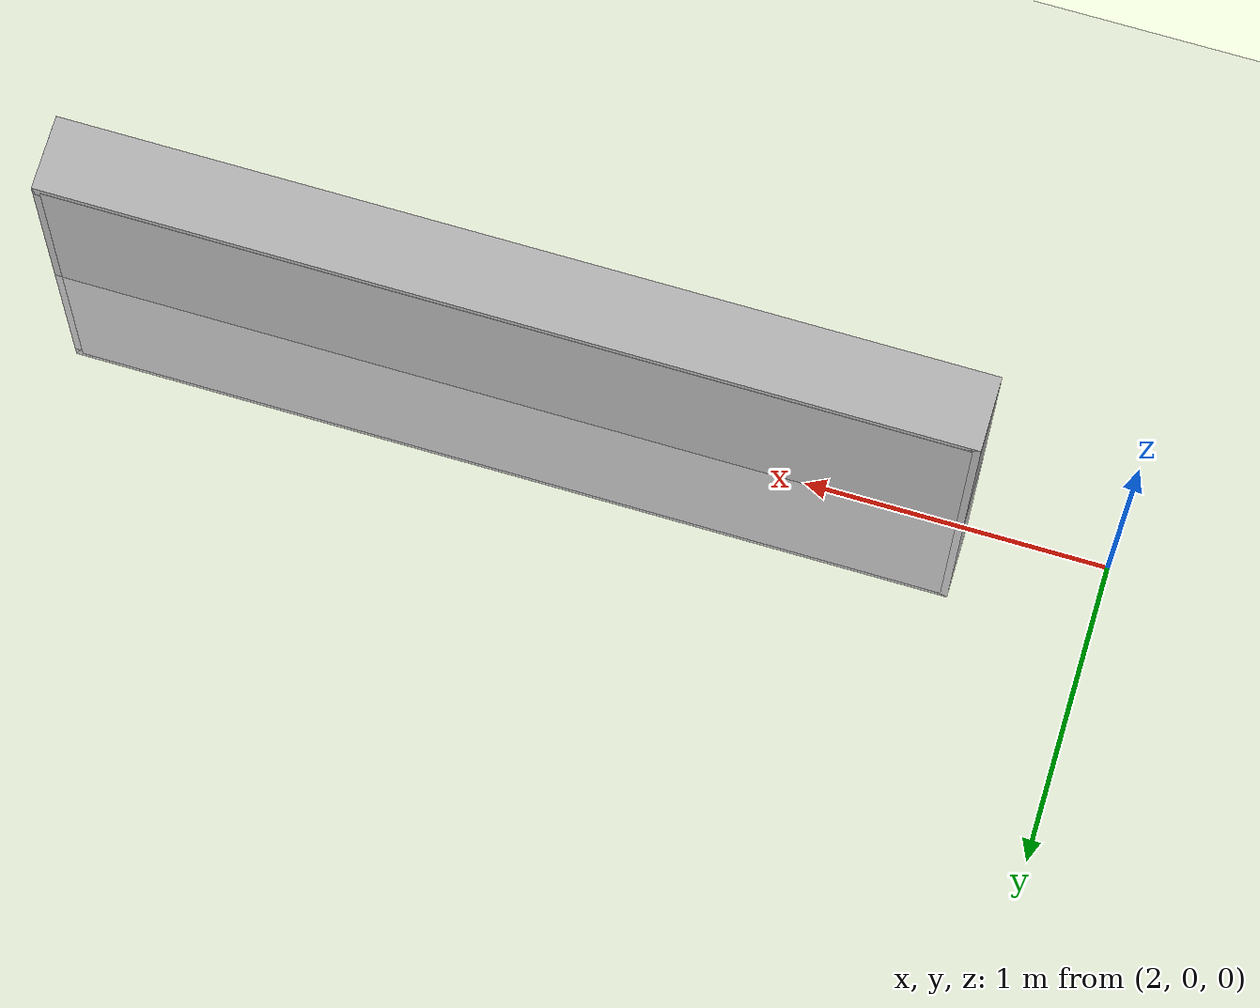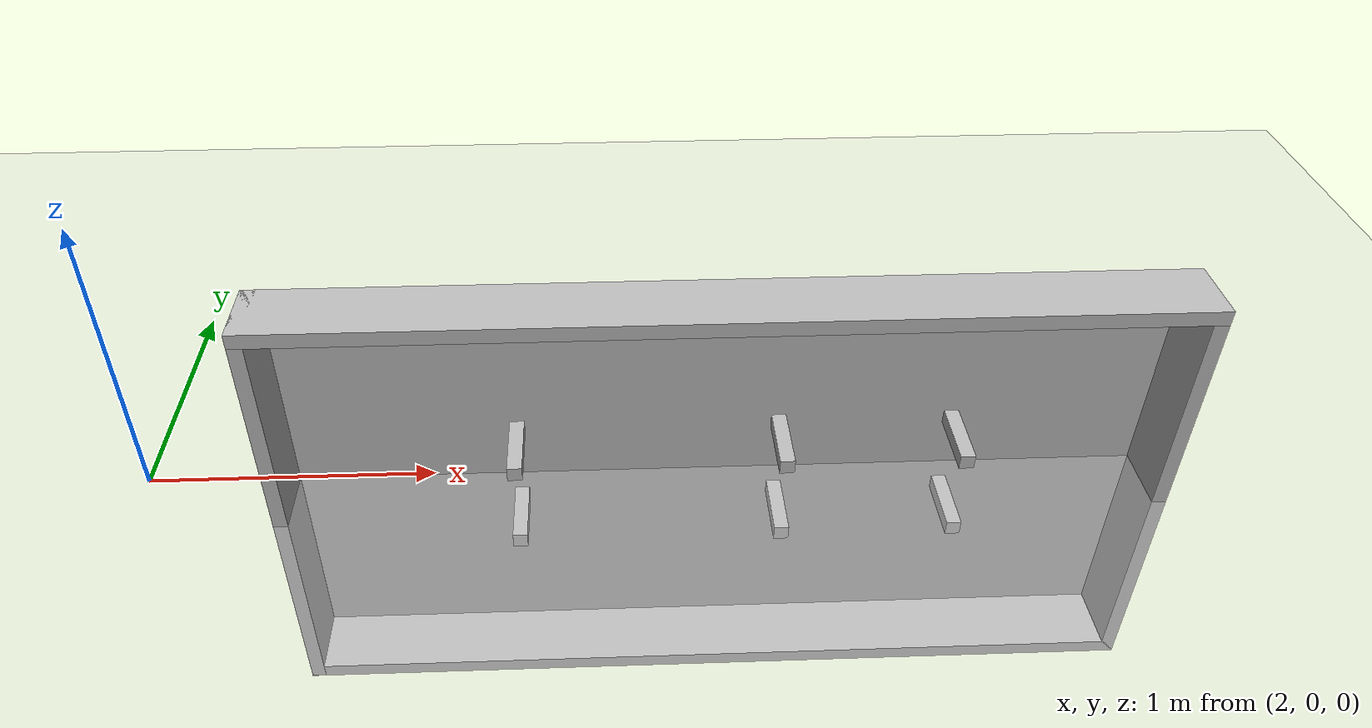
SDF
<sdf version="1.4">
 <world name="default">
  <include><uri>model://ground_plane</uri></include>
  <include><uri>model://sun</uri></include>
  <include><pose>4 0 0 1.57079 0 0</pose><uri>model://potholes</uri></include>
 </world>
</sdf>

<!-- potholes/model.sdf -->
<sdf version="1.8">
  <model name="potholes">
    <static>true</static>
    <link name="floor">
      <collision name="collision">
        <geometry>
          <plane>
            <normal>0 0 1</normal>
            <size>3.0 1.5</size>
          </plane>
        </geometry>
      </collision>
      <visual name="visual">
        <cast_shadows>false</cast_shadows>
        <geometry>
          <plane>
            <normal>0 0 1</normal>
            <size>3.0 1.5</size>
          </plane>
        </geometry>
        <material>
          <script>
            <uri>model://potholes/materials/scripts/</uri>
            <uri>model://potholes/materials/textures/</uri>
            <name>Potholes/BackgroundPotholes</name>
          </script>
        </material>
      </visual>
    </link>
    <link name="side_1">
      <pose relative_to="floor">0.0 0.75 0.125 1.57079632679 0 0</pose>
      <collision name="collision">
        <geometry>
          <box>
            <size>3.05 0.25 0.05</size>
          </box>
        </geometry>
      </collision>
      <visual name="visual">
        <cast_shadows>false</cast_shadows>
        <geometry>
          <box>
            <size>3.05 0.25 0.05</size>
          </box>
        </geometry>
      </visual>
    </link>
    <link name="side_2">
      <pose relative_to="floor">0.0 -0.75 0.125 1.57079632679 0 0</pose>
      <collision name="collision">
        <geometry>
          <box>
            <size>3.05 0.25 0.05</size>
          </box>
        </geometry>
      </collision>
      <visual name="visual">
        <cast_shadows>false</cast_shadows>
        <geometry>
          <box>
            <size>3.05 0.25 0.05</size>
          </box>
        </geometry>
      </visual>
    </link>
    <link name="side_3">
      <pose relative_to="floor">1.5 0.0 0.125 1.57079632679 0 1.57079632679</pose>
      <collision name="collision">
        <geometry>
          <box>
            <size>1.55 0.25 0.05</size>
          </box>
        </geometry>
      </collision>
      <visual name="visual">
        <cast_shadows>false</cast_shadows>
        <geometry>
          <box>
            <size>1.55 0.25 0.05</size>
          </box>
        </geometry>
      </visual>
    </link>
    <link name="side_4">
      <pose relative_to="floor">-1.5 0.0 0.125 1.57079632679 0 1.57079632679</pose>
      <collision name="collision">
        <geometry>
          <box>
            <size>1.55 0.25 0.05</size>
          </box>
        </geometry>
      </collision>
      <visual name="visual">
        <cast_shadows>false</cast_shadows>
        <geometry>
          <box>
            <size>1.55 0.25 0.05</size>
          </box>
        </geometry>
      </visual>
    </link>
    <link name="obstacle_1">
      <pose relative_to="floor">-0.7 0.20 0.125 0 0 0</pose>
      <collision name="collision">
        <geometry>
          <box>
            <size>0.05 0.05 0.25</size>
          </box>
        </geometry>
      </collision>
      <visual name="visual">
        <cast_shadows>false</cast_shadows>
        <geometry>
          <box>
            <size>0.05 0.05 0.25</size>
          </box>
        </geometry>
      </visual>
    </link>
    <link name="obstacle_2">
      <pose relative_to="floor">0.2 0.20 0.125 0 0 0</pose>
      <collision name="collision">
        <geometry>
          <box>
            <size>0.05 0.05 0.25</size>
          </box>
        </geometry>
      </collision>
      <visual name="visual">
        <cast_shadows>false</cast_shadows>
        <geometry>
          <box>
            <size>0.05 0.05 0.25</size>
          </box>
        </geometry>
      </visual>
    </link>
    <link name="obstacle_3">
      <pose relative_to="floor">0.8 0.20 0.125 0 0 0</pose>
      <collision name="collision">
        <geometry>
          <box>
            <size>0.05 0.05 0.25</size>
          </box>
        </geometry>
      </collision>
      <visual name="visual">
        <cast_shadows>false</cast_shadows>
        <geometry>
          <box>
            <size>0.05 0.05 0.25</size>
          </box>
        </geometry>
      </visual>
    </link>
    <link name="obstacle_4">
      <pose relative_to="floor">-0.7 -0.10 0.125 0 0 0</pose>
      <collision name="collision">
        <geometry>
          <box>
            <size>0.05 0.05 0.25</size>
          </box>
        </geometry>
      </collision>
      <visual name="visual">
        <cast_shadows>false</cast_shadows>
        <geometry>
          <box>
            <size>0.05 0.05 0.25</size>
          </box>
        </geometry>
      </visual>
    </link>
    <link name="obstacle_5">
      <pose relative_to="floor">0.2 -0.10 0.125 0 0 0</pose>
      <collision name="collision">
        <geometry>
          <box>
            <size>0.05 0.05 0.25</size>
          </box>
        </geometry>
      </collision>
      <visual name="visual">
        <cast_shadows>false</cast_shadows>
        <geometry>
          <box>
            <size>0.05 0.05 0.25</size>
          </box>
        </geometry>
      </visual>
    </link>
    <link name="obstacle_6">
      <pose relative_to="floor">0.8 -0.10 0.125 0 0 0</pose>
      <collision name="collision">
        <geometry>
          <box>
            <size>0.05 0.05 0.25</size>
          </box>
        </geometry>
      </collision>
      <visual name="visual">
        <cast_shadows>false</cast_shadows>
        <geometry>
          <box>
            <size>0.05 0.05 0.25</size>
          </box>
        </geometry>
      </visual>
    </link>
  </model>
</sdf>
